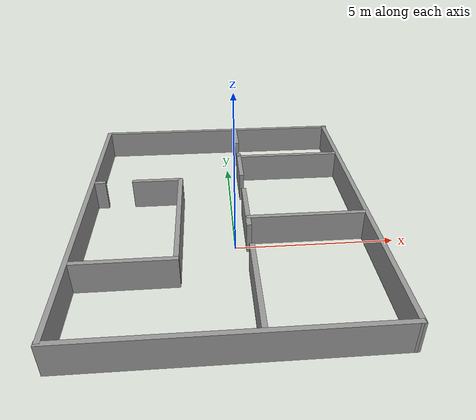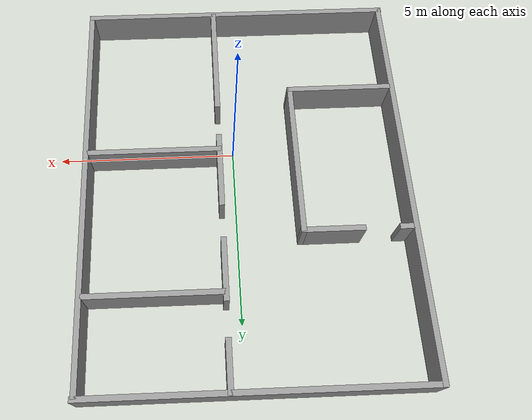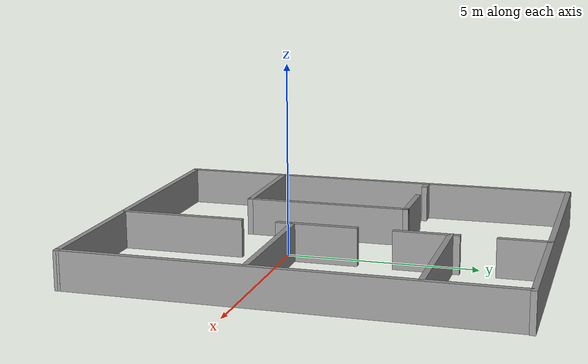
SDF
<?xml version='1.0'?>
<sdf version='1.7'>
  <model name='my2_room'>
    <pose>-0.271597 1.1754 0 0 -0 0</pose>
    <link name='Wall_20'>
      <collision name='Wall_20_Collision'>
        <geometry>
          <box>
            <size>11.265 0.15 1</size>
          </box>
        </geometry>
        <pose>0 0 0.5 0 -0 0</pose>
      </collision>
      <visual name='Wall_20_Visual'>
        <pose>0 0 0.5 0 -0 0</pose>
        <geometry>
          <box>
            <size>11.265 0.15 1</size>
          </box>
        </geometry>
        <material>
          <script>
            <uri>file://media/materials/scripts/gazebo.material</uri>
            <name>Gazebo/Grey</name>
          </script>
          <ambient>1 1 1 1</ambient>
        </material>
        <meta>
          <layer>0</layer>
        </meta>
      </visual>
      <pose>-4.4194 0.033097 0 0 -0 -1.5708</pose>
    </link>
    <link name='Wall_23'>
      <pose>-2.86627 1.5756 0 0 -0 3.14159</pose>
      <visual name='Wall_23_Visual_0'>
        <pose>-0.642932 0 0.5 0 -0 0</pose>
        <geometry>
          <box>
            <size>1.71413 0.15 1</size>
          </box>
        </geometry>
        <material>
          <script>
            <uri>file://media/materials/scripts/gazebo.material</uri>
            <name>Gazebo/Grey</name>
          </script>
          <ambient>1 1 1 1</ambient>
        </material>
        <meta>
          <layer>0</layer>
        </meta>
      </visual>
      <collision name='Wall_23_Collision_0'>
        <geometry>
          <box>
            <size>1.71413 0.15 1</size>
          </box>
        </geometry>
        <pose>-0.642932 0 0.5 0 -0 0</pose>
      </collision>
      <visual name='Wall_23_Visual_1'>
        <pose>1.30707 0 0.5 0 -0 0</pose>
        <geometry>
          <box>
            <size>0.385865 0.15 1</size>
          </box>
        </geometry>
        <material>
          <script>
            <uri>file://media/materials/scripts/gazebo.material</uri>
            <name>Gazebo/Grey</name>
          </script>
          <ambient>1 1 1 1</ambient>
        </material>
        <meta>
          <layer>0</layer>
        </meta>
      </visual>
      <collision name='Wall_23_Collision_1'>
        <geometry>
          <box>
            <size>0.385865 0.15 1</size>
          </box>
        </geometry>
        <pose>1.30707 0 0.5 0 -0 0</pose>
      </collision>
    </link>
    <link name='Wall_26'>
      <pose>0.680597 0.025597 0 0 -0 -1.5708</pose>
      <visual name='Wall_26_Visual_0'>
        <pose>-4.9445 0 0.5 0 -0 0</pose>
        <geometry>
          <box>
            <size>1.361 0.15 1</size>
          </box>
        </geometry>
        <material>
          <script>
            <uri>file://media/materials/scripts/gazebo.material</uri>
            <name>Gazebo/Grey</name>
          </script>
          <ambient>1 1 1 1</ambient>
        </material>
        <meta>
          <layer>0</layer>
        </meta>
      </visual>
      <collision name='Wall_26_Collision_0'>
        <geometry>
          <box>
            <size>1.361 0.15 1</size>
          </box>
        </geometry>
        <pose>-4.9445 0 0.5 0 -0 0</pose>
      </collision>
      <visual name='Wall_26_Visual_1'>
        <pose>-2.5145 0 0.5 0 -0 0</pose>
        <geometry>
          <box>
            <size>1.699 0.15 1</size>
          </box>
        </geometry>
        <material>
          <script>
            <uri>file://media/materials/scripts/gazebo.material</uri>
            <name>Gazebo/Grey</name>
          </script>
          <ambient>1 1 1 1</ambient>
        </material>
        <meta>
          <layer>0</layer>
        </meta>
      </visual>
      <collision name='Wall_26_Collision_1'>
        <geometry>
          <box>
            <size>1.699 0.15 1</size>
          </box>
        </geometry>
        <pose>-2.5145 0 0.5 0 -0 0</pose>
      </collision>
      <visual name='Wall_26_Visual_2'>
        <pose>0.3145 0 0.5 0 -0 0</pose>
        <geometry>
          <box>
            <size>2.159 0.15 1</size>
          </box>
        </geometry>
        <material>
          <script>
            <uri>file://media/materials/scripts/gazebo.material</uri>
            <name>Gazebo/Grey</name>
          </script>
          <ambient>1 1 1 1</ambient>
        </material>
        <meta>
          <layer>0</layer>
        </meta>
      </visual>
      <collision name='Wall_26_Collision_2'>
        <geometry>
          <box>
            <size>2.159 0.15 1</size>
          </box>
        </geometry>
        <pose>0.3145 0 0.5 0 -0 0</pose>
      </collision>
      <visual name='Wall_26_Visual_3'>
        <pose>3.9595 0 0.5 0 -0 0</pose>
        <geometry>
          <box>
            <size>3.331 0.15 1</size>
          </box>
        </geometry>
        <material>
          <script>
            <uri>file://media/materials/scripts/gazebo.material</uri>
            <name>Gazebo/Grey</name>
          </script>
          <ambient>1 1 1 1</ambient>
        </material>
        <meta>
          <layer>0</layer>
        </meta>
      </visual>
      <collision name='Wall_26_Collision_3'>
        <geometry>
          <box>
            <size>3.331 0.15 1</size>
          </box>
        </geometry>
        <pose>3.9595 0 0.5 0 -0 0</pose>
      </collision>
    </link>
    <link name='Wall_34'>
      <collision name='Wall_34_Collision'>
        <geometry>
          <box>
            <size>8.97703 0.15 1</size>
          </box>
        </geometry>
        <pose>0 0 0.5 0 -0 0</pose>
      </collision>
      <visual name='Wall_34_Visual'>
        <pose>0 0 0.5 0 -0 0</pose>
        <geometry>
          <box>
            <size>8.97703 0.15 1</size>
          </box>
        </geometry>
        <material>
          <script>
            <uri>file://media/materials/scripts/gazebo.material</uri>
            <name>Gazebo/Grey</name>
          </script>
          <ambient>1 1 1 1</ambient>
        </material>
        <meta>
          <layer>0</layer>
        </meta>
      </visual>
      <pose>-0.016903 -5.5789 0 0 -0 -0.002606</pose>
    </link>
    <link name='Wall_36'>
      <collision name='Wall_36_Collision'>
        <geometry>
          <box>
            <size>3.75 0.15 1</size>
          </box>
        </geometry>
        <pose>0 0 0.5 0 -0 0</pose>
      </collision>
      <visual name='Wall_36_Visual'>
        <pose>0 0 0.5 0 -0 0</pose>
        <geometry>
          <box>
            <size>3.75 0.15 1</size>
          </box>
        </geometry>
        <material>
          <script>
            <uri>file://media/materials/scripts/gazebo.material</uri>
            <name>Gazebo/Grey</name>
          </script>
          <ambient>1 1 1 1</ambient>
        </material>
        <meta>
          <layer>0</layer>
        </meta>
      </visual>
      <pose>2.4876 3.1426 0 0 -0 0</pose>
    </link>
    <link name='Wall_38'>
      <collision name='Wall_38_Collision'>
        <geometry>
          <box>
            <size>3.75 0.15 1</size>
          </box>
        </geometry>
        <pose>0 0 0.5 0 -0 0</pose>
      </collision>
      <visual name='Wall_38_Visual'>
        <pose>0 0 0.5 0 -0 0</pose>
        <geometry>
          <box>
            <size>3.75 0.15 1</size>
          </box>
        </geometry>
        <material>
          <script>
            <uri>file://media/materials/scripts/gazebo.material</uri>
            <name>Gazebo/Grey</name>
          </script>
          <ambient>1 1 1 1</ambient>
        </material>
        <meta>
          <layer>0</layer>
        </meta>
      </visual>
      <pose>2.5076 -0.917403 0 0 -0 0</pose>
    </link>
    <link name='Wall_41'>
      <collision name='Wall_41_Collision'>
        <geometry>
          <box>
            <size>4.5 0.15 1</size>
          </box>
        </geometry>
        <pose>0 0 0.5 0 -0 0</pose>
      </collision>
      <visual name='Wall_41_Visual'>
        <pose>0 0 0.5 0 -0 0</pose>
        <geometry>
          <box>
            <size>4.5 0.15 1</size>
          </box>
        </geometry>
        <material>
          <script>
            <uri>file://media/materials/scripts/gazebo.material</uri>
            <name>Gazebo/Grey</name>
          </script>
          <ambient>1 1 1 1</ambient>
        </material>
        <meta>
          <layer>0</layer>
        </meta>
      </visual>
      <pose>-1.4414 -0.599403 0 0 -0 -1.5708</pose>
    </link>
    <link name='Wall_42'>
      <collision name='Wall_42_Collision'>
        <geometry>
          <box>
            <size>3 0.15 1</size>
          </box>
        </geometry>
        <pose>0 0 0.5 0 -0 0</pose>
      </collision>
      <visual name='Wall_42_Visual'>
        <pose>0 0 0.5 0 -0 0</pose>
        <geometry>
          <box>
            <size>3 0.15 1</size>
          </box>
        </geometry>
        <material>
          <script>
            <uri>file://media/materials/scripts/gazebo.material</uri>
            <name>Gazebo/Grey</name>
          </script>
          <ambient>1 1 1 1</ambient>
        </material>
        <meta>
          <layer>0</layer>
        </meta>
      </visual>
      <pose>-2.8664 -2.7744 0 0 -0 3.14159</pose>
    </link>
    <link name='Wall_47'>
      <collision name='Wall_47_Collision'>
        <geometry>
          <box>
            <size>11.25 0.15 1</size>
          </box>
        </geometry>
        <pose>0 0 0.5 0 -0 0</pose>
      </collision>
      <visual name='Wall_47_Visual'>
        <pose>0 0 0.5 0 -0 0</pose>
        <geometry>
          <box>
            <size>11.25 0.15 1</size>
          </box>
        </geometry>
        <material>
          <script>
            <uri>file://media/materials/scripts/gazebo.material</uri>
            <name>Gazebo/Grey</name>
          </script>
          <ambient>1 1 1 1</ambient>
        </material>
        <meta>
          <layer>0</layer>
        </meta>
      </visual>
      <pose>4.3966 -0.040403 0 0 -0 1.5708</pose>
    </link>
    <link name='Wall_52'>
      <collision name='Wall_52_Collision'>
        <geometry>
          <box>
            <size>9 0.15 1</size>
          </box>
        </geometry>
        <pose>0 0 0.5 0 -0 0</pose>
      </collision>
      <visual name='Wall_52_Visual'>
        <pose>0 0 0.5 0 -0 0</pose>
        <geometry>
          <box>
            <size>9 0.15 1</size>
          </box>
        </geometry>
        <material>
          <script>
            <uri>file://media/materials/scripts/gazebo.material</uri>
            <name>Gazebo/Grey</name>
          </script>
          <ambient>1 1 1 1</ambient>
        </material>
        <meta>
          <layer>0</layer>
        </meta>
      </visual>
      <pose>0.005597 5.5906 0 0 -0 0</pose>
    </link>
    <static>1</static>
  </model>
</sdf>
